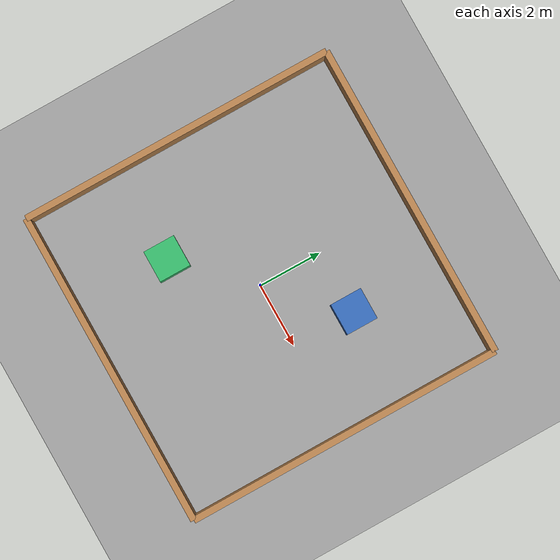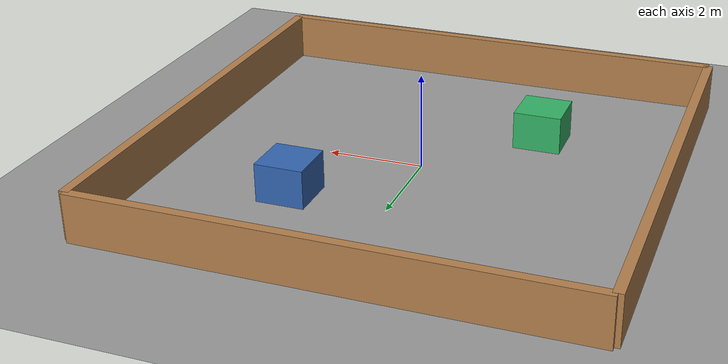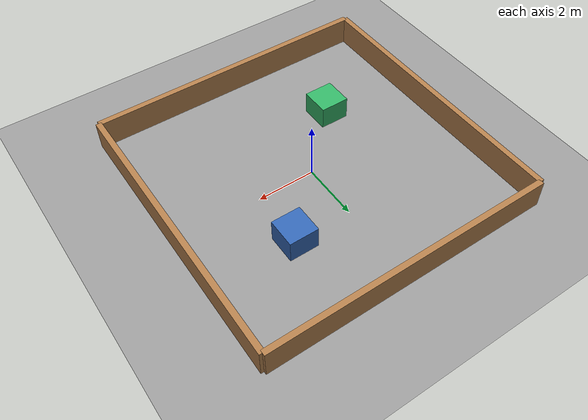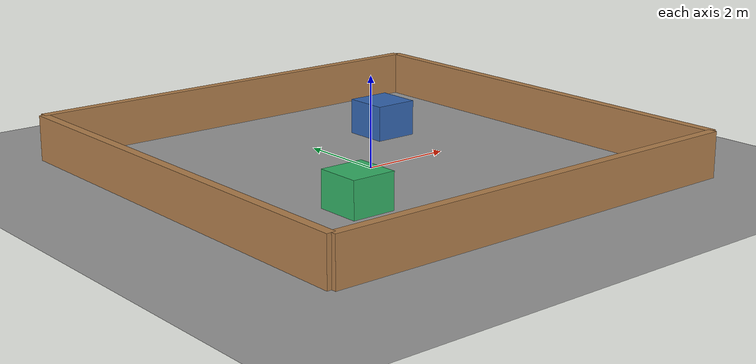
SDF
<?xml version="1.0" ?>
<sdf version="1.9">
  <world name="factory">
    <physics name="1ms" type="ignored">
      <max_step_size>0.001</max_step_size>
      <real_time_factor>1.0</real_time_factor>
    </physics>
    <plugin filename="gz-sim-physics-system" name="gz::sim::systems::Physics"/>
    <plugin filename="gz-sim-user-commands-system" name="gz::sim::systems::UserCommands"/>
    <plugin filename="gz-sim-scene-broadcaster-system" name="gz::sim::systems::SceneBroadcaster"/>
    <plugin filename="gz-sim-sensors-system" name="gz::sim::systems::Sensors">
      <render_engine>ogre2</render_engine>
    </plugin>

    <light type="directional" name="sun">
      <cast_shadows>true</cast_shadows>
      <pose>0 0 10 0 0 0</pose>
      <diffuse>0.8 0.8 0.8 1</diffuse>
      <specular>0.2 0.2 0.2 1</specular>
      <direction>-0.5 0.1 -0.9</direction>
    </light>

    <model name="ground_plane">
      <static>true</static>
      <link name="link">
        <collision name="collision">
          <geometry><plane><normal>0 0 1</normal><size>20 20</size></plane></geometry>
        </collision>
        <visual name="visual">
          <geometry><plane><normal>0 0 1</normal><size>20 20</size></plane></geometry>
          <material>
            <ambient>0.6 0.6 0.6 1</ambient>
            <diffuse>0.6 0.6 0.6 1</diffuse>
          </material>
        </visual>
      </link>
    </model>
    <model name="wall_north">
      <static>true</static>
      <pose>0 5 0.5 0 0 0</pose>
      <link name="link">
        <collision name="collision"><geometry><box><size>10 0.2 1</size></box></geometry></collision>
        <visual name="visual"><geometry><box><size>10 0.2 1</size></box></geometry>
          <material><ambient>0.7 0.5 0.3 1</ambient><diffuse>0.7 0.5 0.3 1</diffuse></material>
        </visual>
      </link>
    </model>

    <model name="wall_south">
      <static>true</static>
      <pose>0 -5 0.5 0 0 0</pose>
      <link name="link">
        <collision name="collision"><geometry><box><size>10 0.2 1</size></box></geometry></collision>
        <visual name="visual"><geometry><box><size>10 0.2 1</size></box></geometry>
          <material><ambient>0.7 0.5 0.3 1</ambient><diffuse>0.7 0.5 0.3 1</diffuse></material>
        </visual>
      </link>
    </model>

    <model name="wall_east">
      <static>true</static>
      <pose>5 0 0.5 0 0 1.5708</pose>
      <link name="link">
        <collision name="collision"><geometry><box><size>10 0.2 1</size></box></geometry></collision>
        <visual name="visual"><geometry><box><size>10 0.2 1</size></box></geometry>
          <material><ambient>0.7 0.5 0.3 1</ambient><diffuse>0.7 0.5 0.3 1</diffuse></material>
        </visual>
      </link>
    </model>

    <model name="wall_west">
      <static>true</static>
      <pose>-5 0 0.5 0 0 1.5708</pose>
      <link name="link">
        <collision name="collision"><geometry><box><size>10 0.2 1</size></box></geometry></collision>
        <visual name="visual"><geometry><box><size>10 0.2 1</size></box></geometry>
          <material><ambient>0.7 0.5 0.3 1</ambient><diffuse>0.7 0.5 0.3 1</diffuse></material>
        </visual>
      </link>
    </model>

    <model name="station_a">
      <static>true</static>
      <pose>2 2 0.4 0 0 0</pose>
      <link name="link">
        <collision name="collision"><geometry><box><size>1 1 0.8</size></box></geometry></collision>
        <visual name="visual"><geometry><box><size>1 1 0.8</size></box></geometry>
          <material><ambient>0.2 0.4 0.7 1</ambient><diffuse>0.2 0.4 0.7 1</diffuse></material>
        </visual>
      </link>
    </model>

    <model name="station_b">
      <static>true</static>
      <pose>-2 -2 0.4 0 0 0</pose>
      <link name="link">
        <collision name="collision"><geometry><box><size>1 1 0.8</size></box></geometry></collision>
        <visual name="visual"><geometry><box><size>1 1 0.8</size></box></geometry>
          <material><ambient>0.2 0.7 0.4 1</ambient><diffuse>0.2 0.7 0.4 1</diffuse></material>
        </visual>
      </link>
    </model>
  </world>
</sdf>
